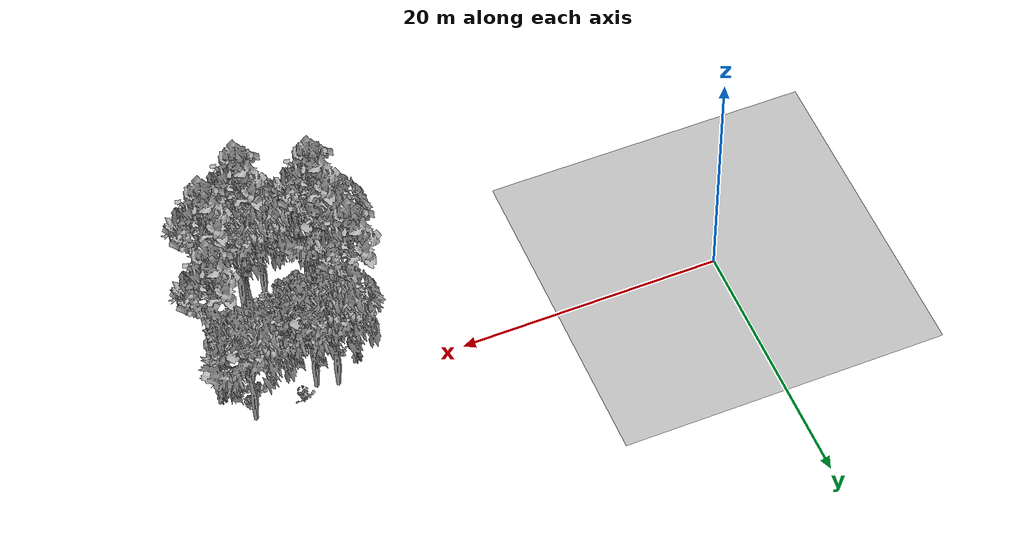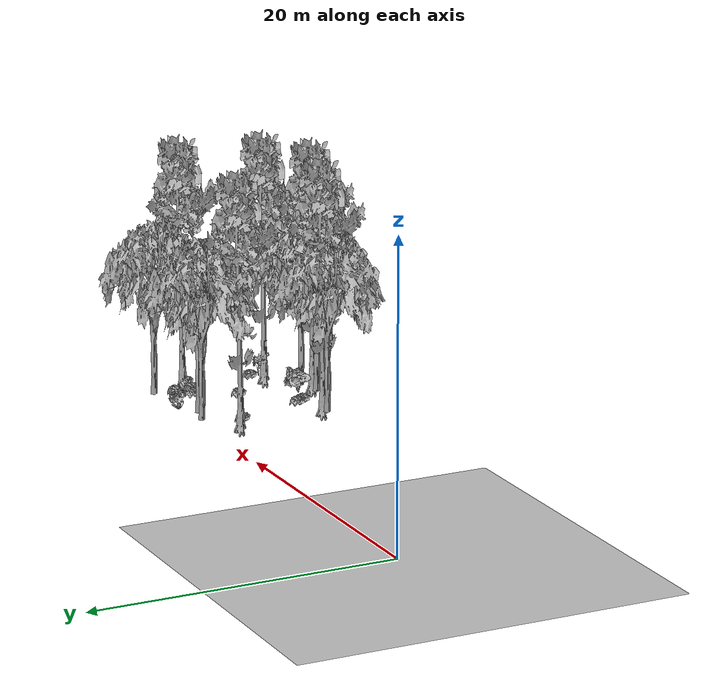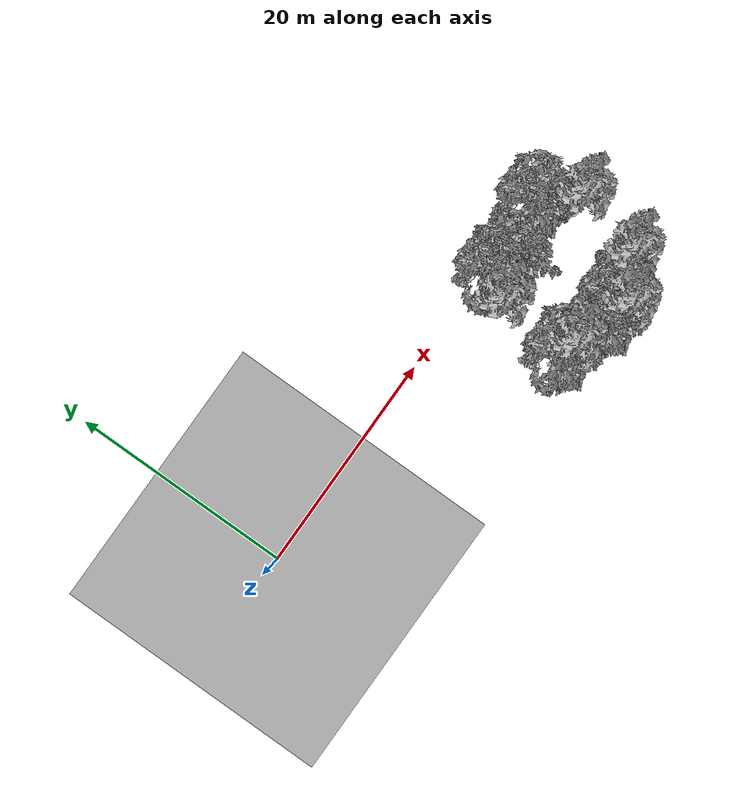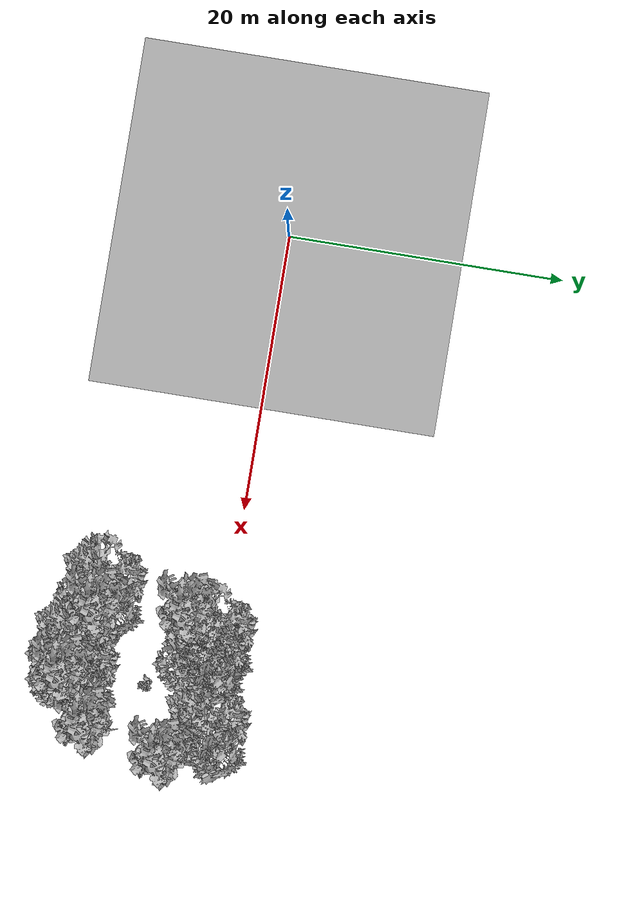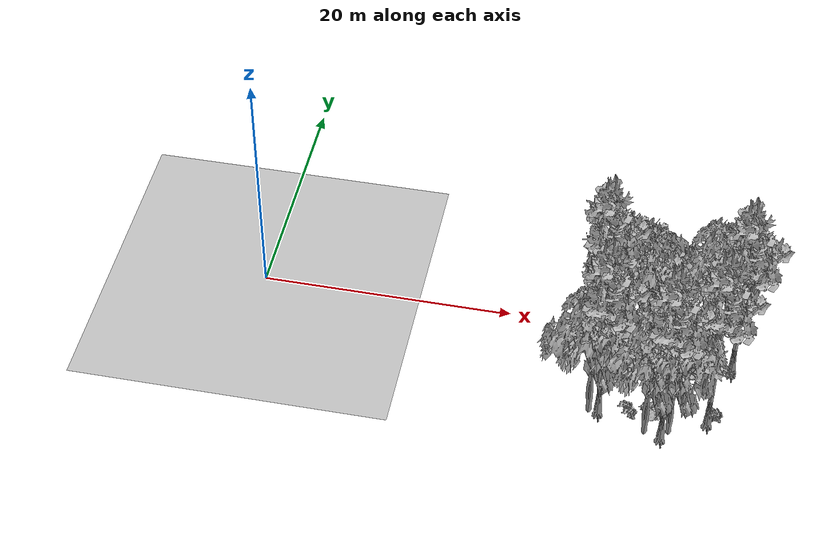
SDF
<sdf version="1.7">
 <world name="default">
  <model name="ground_plane">
   <static>1</static>
   <link name="link">
    <collision name="collision">
     <pose>-50 0 0 0 -0 0</pose>
     <geometry><plane><normal>0 0 1</normal><size>80 80</size></plane></geometry>
     <surface><contact><ode><min_depth>0.01</min_depth><max_vel>0</max_vel></ode></contact></surface>
    </collision>
    <visual name="grass">
     <cast_shadows>0</cast_shadows>
     <geometry>
      <mesh>
       <scale>0.46714285714285714 0.46714285714285714 0.1</scale>
       <uri>file://grass_plane/meshes/grass_plane.dae</uri>
      </mesh>
     </geometry>
    </visual>
   </link>
  </model>
  <model name="Tree 138">
   <static>1</static>
   <pose>30.979407619762995 -0.9405738468836589 0 1.57079 -0 0</pose>
   <link name="link">
    <collision name="collision">
     <geometry><mesh><scale>3.5 5 3.5</scale><uri>model://tree_2/meshes/tree_2.obj</uri></mesh></geometry>
    </collision>
    <visual name="visual">
     <geometry><mesh><scale>3.5 5 3.5</scale><uri>model://tree_2/meshes/tree_2.obj</uri></mesh></geometry>
    </visual>
   </link>
  </model>
  <model name="Tree 144">
   <static>1</static>
   <pose>27.32019205048634 -8.659249073810944 0 1.57079 -0 0</pose>
   <link name="link">
    <collision name="collision">
     <geometry><mesh><scale>3.5 5 3.5</scale><uri>model://tree_2/meshes/tree_2.obj</uri></mesh></geometry>
    </collision>
    <visual name="visual">
     <geometry><mesh><scale>3.5 5 3.5</scale><uri>model://tree_2/meshes/tree_2.obj</uri></mesh></geometry>
    </visual>
   </link>
  </model>
  <model name="Tree 219">
   <static>1</static>
   <pose>29.463098673333562 -0.5100132082428104 0 1.57079 -0 0</pose>
   <link name="link">
    <collision name="collision">
     <geometry><mesh><scale>3.5 5 3.5</scale><uri>model://tree_2/meshes/tree_2.obj</uri></mesh></geometry>
    </collision>
    <visual name="visual">
     <geometry><mesh><scale>3.5 5 3.5</scale><uri>model://tree_2/meshes/tree_2.obj</uri></mesh></geometry>
    </visual>
   </link>
  </model>
  <model name="Tree 236">
   <static>1</static>
   <pose>31.68234724720722 -9.950620170714643 0 1.57079 -0 0</pose>
   <link name="link">
    <collision name="collision">
     <geometry><mesh><scale>3.5 5 3.5</scale><uri>model://tree_2/meshes/tree_2.obj</uri></mesh></geometry>
    </collision>
    <visual name="visual">
     <geometry><mesh><scale>3.5 5 3.5</scale><uri>model://tree_2/meshes/tree_2.obj</uri></mesh></geometry>
    </visual>
   </link>
  </model>
  <model name="Tree 246">
   <static>1</static>
   <pose>28.11861880932358 -8.645344210381847 0 1.57079 -0 0</pose>
   <link name="link">
    <collision name="collision">
     <geometry><mesh><scale>3.5 5 3.5</scale><uri>model://tree_9/meshes/tree_9.obj</uri></mesh></geometry>
    </collision>
    <visual name="visual">
     <geometry><mesh><scale>3.5 5 3.5</scale><uri>model://tree_9/meshes/tree_9.obj</uri></mesh></geometry>
    </visual>
   </link>
  </model>
  <model name="Tree 395">
   <static>1</static>
   <pose>33.45995695143307 -9.634853857695038 0 1.57079 -0 0</pose>
   <link name="link">
    <collision name="collision">
     <geometry><mesh><scale>3.5 5 3.5</scale><uri>model://tree_2/meshes/tree_2.obj</uri></mesh></geometry>
    </collision>
    <visual name="visual">
     <geometry><mesh><scale>3.5 5 3.5</scale><uri>model://tree_2/meshes/tree_2.obj</uri></mesh></geometry>
    </visual>
   </link>
  </model>
  <model name="Tree 452">
   <static>1</static>
   <pose>27.44314641924082 -2.3361027993512877 0 1.57079 -0 0</pose>
   <link name="link">
    <collision name="collision">
     <geometry><mesh><scale>3.5 5 3.5</scale><uri>model://tree_9/meshes/tree_9.obj</uri></mesh></geometry>
    </collision>
    <visual name="visual">
     <geometry><mesh><scale>3.5 5 3.5</scale><uri>model://tree_9/meshes/tree_9.obj</uri></mesh></geometry>
    </visual>
   </link>
  </model>
  <model name="Tree 562">
   <static>1</static>
   <pose>33.03055153646811 -10.249519202726283 0 1.57079 -0 0</pose>
   <link name="link">
    <collision name="collision">
     <geometry><mesh><scale>3.5 5 3.5</scale><uri>model://tree_9/meshes/tree_9.obj</uri></mesh></geometry>
    </collision>
    <visual name="visual">
     <geometry><mesh><scale>3.5 5 3.5</scale><uri>model://tree_9/meshes/tree_9.obj</uri></mesh></geometry>
    </visual>
   </link>
  </model>
  <model name="Tree 578">
   <static>1</static>
   <pose>37.684719713355975 -2.6819557758842194 0 1.57079 -0 0</pose>
   <link name="link">
    <collision name="collision">
     <geometry><mesh><scale>3.5 5 3.5</scale><uri>model://tree_9/meshes/tree_9.obj</uri></mesh></geometry>
    </collision>
    <visual name="visual">
     <geometry><mesh><scale>3.5 5 3.5</scale><uri>model://tree_9/meshes/tree_9.obj</uri></mesh></geometry>
    </visual>
   </link>
  </model>
  <model name="Tree 587">
   <static>1</static>
   <pose>36.340745135236006 -8.176371522543615 0 1.57079 -0 0</pose>
   <link name="link">
    <collision name="collision">
     <geometry><mesh><scale>3.5 5 3.5</scale><uri>model://tree_9/meshes/tree_9.obj</uri></mesh></geometry>
    </collision>
    <visual name="visual">
     <geometry><mesh><scale>3.5 5 3.5</scale><uri>model://tree_9/meshes/tree_9.obj</uri></mesh></geometry>
    </visual>
   </link>
  </model>
  <model name="Tree 600">
   <static>1</static>
   <pose>36.00248269575762 0.09754958644906253 0 1.57079 -0 0</pose>
   <link name="link">
    <collision name="collision">
     <geometry><mesh><scale>3.5 5 3.5</scale><uri>model://tree_2/meshes/tree_2.obj</uri></mesh></geometry>
    </collision>
    <visual name="visual">
     <geometry><mesh><scale>3.5 5 3.5</scale><uri>model://tree_2/meshes/tree_2.obj</uri></mesh></geometry>
    </visual>
   </link>
  </model>
  <model name="Bush 16">
   <static>1</static>
   <pose>33.50182777945692 -5.022409507300303 0 1.57079 -0 0</pose>
   <link name="link">
    <collision name="collision">
     <geometry><mesh><scale>2 2 2</scale><uri>model://bush_2/meshes/bush_2.obj</uri></mesh></geometry>
     <surface><contact><collide_without_contact>false</collide_without_contact></contact></surface>
    </collision>
    <visual name="visual">
     <geometry><mesh><scale>2 2 2</scale><uri>model://bush_2/meshes/bush_2.obj</uri></mesh></geometry>
    </visual>
   </link>
  </model>
  <model name="Bush 39">
   <static>1</static>
   <pose>30.51488707861732 -8.365846533624051 0 1.57079 -0 0</pose>
   <link name="link">
    <collision name="collision">
     <geometry><mesh><scale>2 2 2</scale><uri>model://bush_2/meshes/bush_2.obj</uri></mesh></geometry>
     <surface><contact><collide_without_contact>false</collide_without_contact></contact></surface>
    </collision>
    <visual name="visual">
     <geometry><mesh><scale>2 2 2</scale><uri>model://bush_2/meshes/bush_2.obj</uri></mesh></geometry>
    </visual>
   </link>
  </model>
  <model name="Bush 161">
   <static>1</static>
   <pose>35.9199903414613 -1.3930621561243868 0 1.57079 -0 0</pose>
   <link name="link">
    <collision name="collision">
     <geometry><mesh><scale>2 2 2</scale><uri>model://bush_2/meshes/bush_2.obj</uri></mesh></geometry>
     <surface><contact><collide_without_contact>false</collide_without_contact></contact></surface>
    </collision>
    <visual name="visual">
     <geometry><mesh><scale>2 2 2</scale><uri>model://bush_2/meshes/bush_2.obj</uri></mesh></geometry>
    </visual>
   </link>
  </model>
  <model name="Bush 190">
   <static>1</static>
   <pose>36.8766392616448 -7.395631317685741 0 1.57079 -0 0</pose>
   <link name="link">
    <collision name="collision">
     <geometry><mesh><scale>2 2 2</scale><uri>model://bush_2/meshes/bush_2.obj</uri></mesh></geometry>
     <surface><contact><collide_without_contact>false</collide_without_contact></contact></surface>
    </collision>
    <visual name="visual">
     <geometry><mesh><scale>2 2 2</scale><uri>model://bush_2/meshes/bush_2.obj</uri></mesh></geometry>
    </visual>
   </link>
  </model>
  <model name="Bush 211">
   <static>1</static>
   <pose>30.119745889435535 -7.772446055787242 0 1.57079 -0 0</pose>
   <link name="link">
    <collision name="collision">
     <geometry><mesh><scale>2 2 2</scale><uri>model://bush_2/meshes/bush_2.obj</uri></mesh></geometry>
     <surface><contact><collide_without_contact>false</collide_without_contact></contact></surface>
    </collision>
    <visual name="visual">
     <geometry><mesh><scale>2 2 2</scale><uri>model://bush_2/meshes/bush_2.obj</uri></mesh></geometry>
    </visual>
   </link>
  </model>
  <model name="Bush 215">
   <static>1</static>
   <pose>37.499466910707724 -2.896648329504089 0 1.57079 -0 0</pose>
   <link name="link">
    <collision name="collision">
     <geometry><mesh><scale>2 2 2</scale><uri>model://bush_2/meshes/bush_2.obj</uri></mesh></geometry>
     <surface><contact><collide_without_contact>false</collide_without_contact></contact></surface>
    </collision>
    <visual name="visual">
     <geometry><mesh><scale>2 2 2</scale><uri>model://bush_2/meshes/bush_2.obj</uri></mesh></geometry>
    </visual>
   </link>
  </model>
  <model name="Bush 267">
   <static>1</static>
   <pose>32.11373438854696 -8.753381093563853 0 1.57079 -0 0</pose>
   <link name="link">
    <collision name="collision">
     <geometry><mesh><scale>2 2 2</scale><uri>model://bush_1/meshes/bush_1.obj</uri></mesh></geometry>
     <surface><contact><collide_without_contact>false</collide_without_contact></contact></surface>
    </collision>
    <visual name="visual">
     <geometry><mesh><scale>2 2 2</scale><uri>model://bush_1/meshes/bush_1.obj</uri></mesh></geometry>
    </visual>
   </link>
  </model>
  <model name="Bush 331">
   <static>1</static>
   <pose>28.535431599665444 -3.039147217047656 0 1.57079 -0 0</pose>
   <link name="link">
    <collision name="collision">
     <geometry><mesh><scale>2 2 2</scale><uri>model://bush_2/meshes/bush_2.obj</uri></mesh></geometry>
     <surface><contact><collide_without_contact>false</collide_without_contact></contact></surface>
    </collision>
    <visual name="visual">
     <geometry><mesh><scale>2 2 2</scale><uri>model://bush_2/meshes/bush_2.obj</uri></mesh></geometry>
    </visual>
   </link>
  </model>
  <model name="Bush 361">
   <static>1</static>
   <pose>36.041786615951565 -2.644551407432857 0 1.57079 -0 0</pose>
   <link name="link">
    <collision name="collision">
     <geometry><mesh><scale>2 2 2</scale><uri>model://bush_2/meshes/bush_2.obj</uri></mesh></geometry>
     <surface><contact><collide_without_contact>false</collide_without_contact></contact></surface>
    </collision>
    <visual name="visual">
     <geometry><mesh><scale>2 2 2</scale><uri>model://bush_2/meshes/bush_2.obj</uri></mesh></geometry>
    </visual>
   </link>
  </model>
  <model name="Bush 400">
   <static>1</static>
   <pose>34.882316454449224 -2.224473616994473 0 1.57079 -0 0</pose>
   <link name="link">
    <collision name="collision">
     <geometry><mesh><scale>2 2 2</scale><uri>model://bush_2/meshes/bush_2.obj</uri></mesh></geometry>
     <surface><contact><collide_without_contact>false</collide_without_contact></contact></surface>
    </collision>
    <visual name="visual">
     <geometry><mesh><scale>2 2 2</scale><uri>model://bush_2/meshes/bush_2.obj</uri></mesh></geometry>
    </visual>
   </link>
  </model>
  <model name="Bush 403">
   <static>1</static>
   <pose>32.340131828028575 -0.021664905182504413 0 1.57079 -0 0</pose>
   <link name="link">
    <collision name="collision">
     <geometry><mesh><scale>2 2 2</scale><uri>model://bush_4/meshes/bush_4.obj</uri></mesh></geometry>
     <surface><contact><collide_without_contact>false</collide_without_contact></contact></surface>
    </collision>
    <visual name="visual">
     <geometry><mesh><scale>2 2 2</scale><uri>model://bush_4/meshes/bush_4.obj</uri></mesh></geometry>
    </visual>
   </link>
  </model>
  <model name="Bush 552">
   <static>1</static>
   <pose>36.722590050932354 -7.897939898494393 0 1.57079 -0 0</pose>
   <link name="link">
    <collision name="collision">
     <geometry><mesh><scale>2 2 2</scale><uri>model://bush_5/meshes/bush_5.obj</uri></mesh></geometry>
     <surface><contact><collide_without_contact>false</collide_without_contact></contact></surface>
    </collision>
    <visual name="visual">
     <geometry><mesh><scale>2 2 2</scale><uri>model://bush_5/meshes/bush_5.obj</uri></mesh></geometry>
    </visual>
   </link>
  </model>
 </world>
</sdf>
